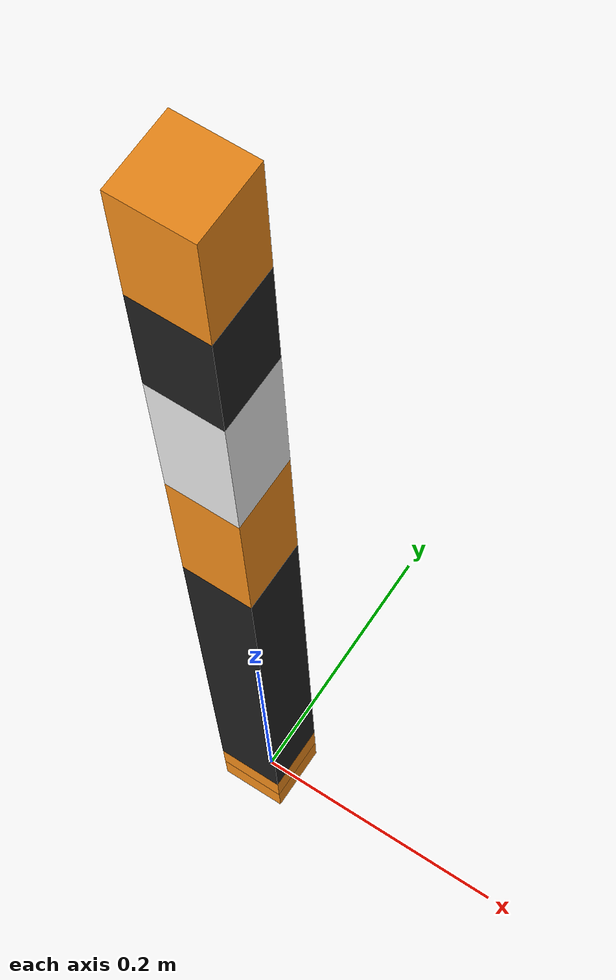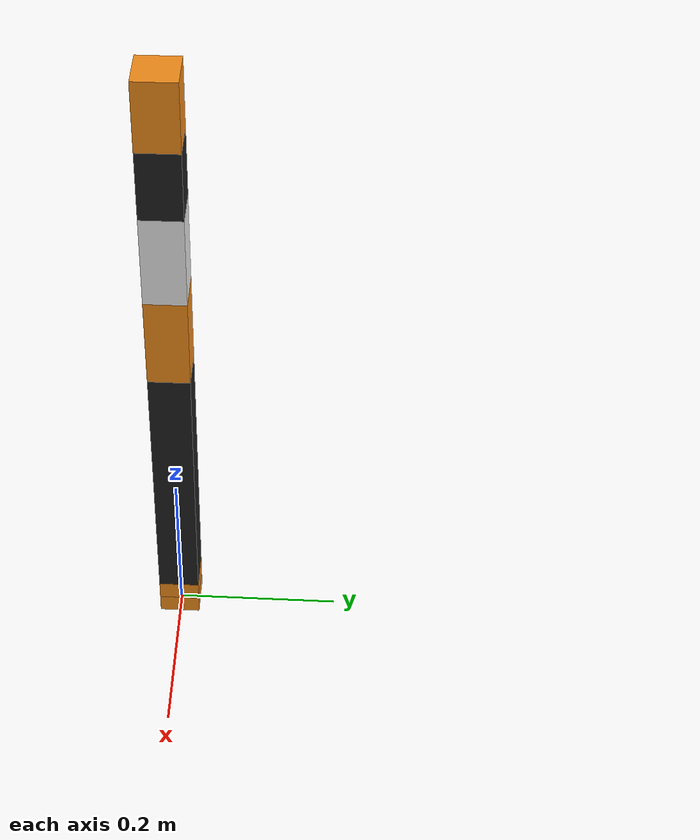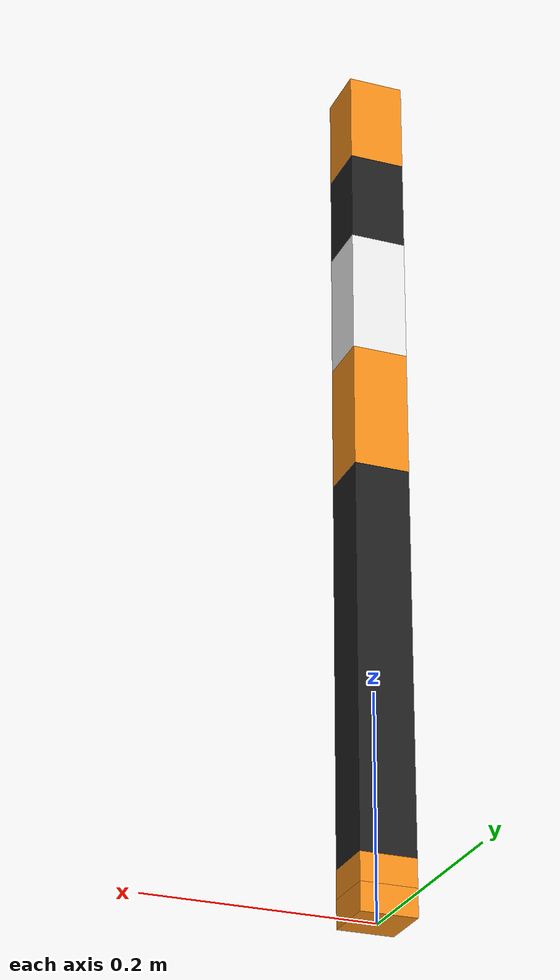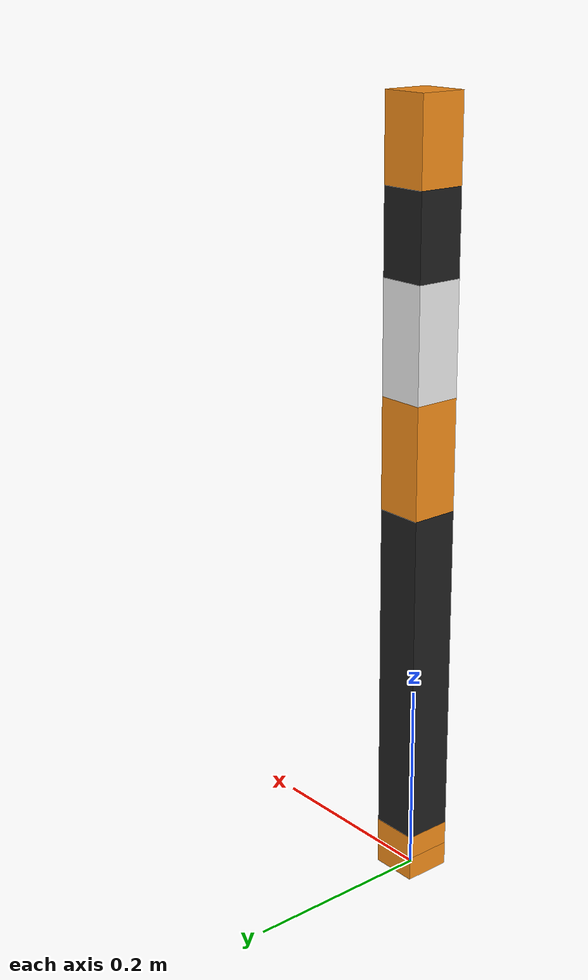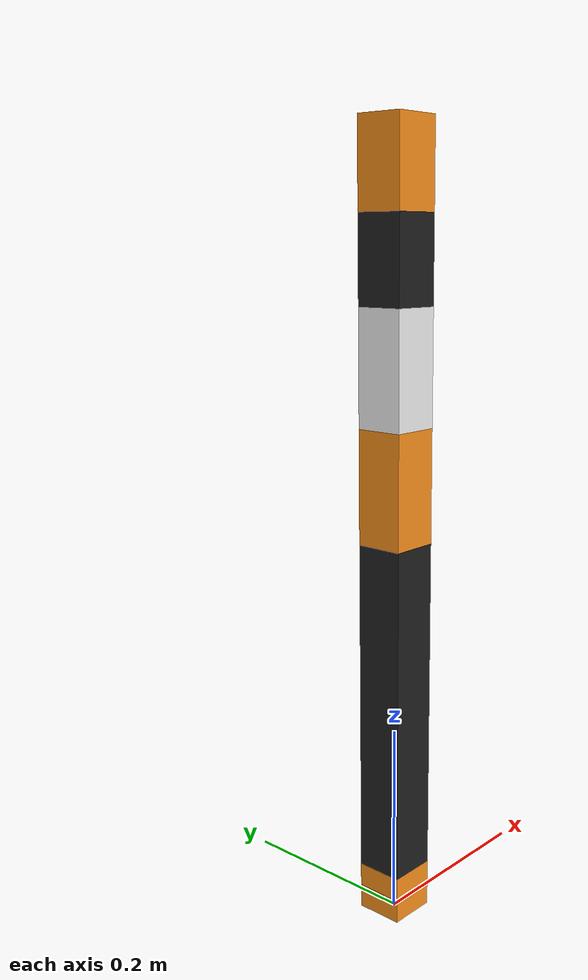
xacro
<?xml version="1.0"?>
<!-- Revolute-Revolute Manipulator -->
<robot name="rrbot" xmlns:xacro="http://www.ros.org/wiki/xacro">

  <!-- Constants for robot dimensions -->
  <xacro:property name="PI" value="3.1415926535897931"/>
  <xacro:property name="mass" value="1" /> <!-- arbitrary value for mass -->
  <xacro:property name="width" value="0.05" /> <!-- Square dimensions (widthxwidth) of beams -->
  <xacro:property name="height1" value="0.025" /> <!-- Link 1 -->
  <xacro:property name="height2" value="0.35" /> <!-- Link 2 -->
  <xacro:property name="height3" value="0.115" /> <!-- Link 3 -->
  <xacro:property name="height4" value="0.115" /> <!-- Link 4 -->
  <xacro:property name="height5" value="0.085" /> <!-- Link 5 -->
  <xacro:property name="height6" value="0.085" /> <!-- Link 6 -->
  <xacro:property name="camera_link" value="0.05" /> <!-- Size of square 'camera' box -->
  <xacro:property name="axel_offset" value="0.05" /> <!-- Space btw top of beam and the each joint -->

  <!-- Import all Gazebo-customization elements, including Gazebo colors -->
  <xacro:include filename="$(find rrbot_description)/urdf/rrbot.gazebo" />
  <!-- Import Rviz colors -->
  <xacro:include filename="$(find rrbot_description)/urdf/materials.xacro" />

  <!-- Used for fixing robot to Gazebo 'base_link' -->
  <link name="world"/>

  <joint name="fixed" type="fixed">
    <parent link="world"/>
    <child link="base"/>
  </joint>

  <!-- Base Link -->

  <link name="base">
    <collision>
      <origin xyz="0 0 ${height1/2}" rpy="0 0 0"/>
      <geometry>
	      <box size="${width} ${width} ${height1}"/>
      </geometry>
    </collision>

    <visual>
      <origin xyz="0 0 ${height1/2}" rpy="0 0 0"/>
      <geometry>
        <box size="${width} ${width} ${height1}"/>
      </geometry>
      <material name="orange"/>
    </visual>

    <inertial>
      <origin xyz="0 0 ${height1/2}" rpy="0 0 0"/>
      <mass value="${mass}"/>
      <inertia
        ixx="${mass / 12.0 * (width*width + height1*height1)}" ixy="0.0" ixz="0.0"
        iyy="${mass / 12.0 * (height1*height1 + width*width)}" iyz="0.0"
        izz="${mass / 12.0 * (width*width + width*width)}"/>
    </inertial>
  </link>

  <joint name="joint1" type="continuous">
    <parent link="base"/>
    <child link="link1"/>
    <origin xyz="0 0 ${height1}" rpy="0 0 0"/>
    <axis xyz="0 0 1"/>
    <dynamics damping="0.7"/>
  </joint>

  <link name="link1">
    <collision>
      <origin xyz="0 0 ${height1/2}" rpy="0 0 0"/>
      <geometry>
	      <box size="${width} ${width} ${height1}"/>
      </geometry>
    </collision>

    <visual>
      <origin xyz="0 0 ${height1/2}" rpy="0 0 0"/>
      <geometry>
	      <box size="${width} ${width} ${height1}"/>
      </geometry>
      <material name="orange"/>
    </visual>

    <inertial>
      <origin xyz="0 0 ${height1/2}" rpy="0 0 0"/>
      <mass value="${mass}"/>
      <inertia
	  ixx="${mass / 12.0 * (width*width + height1*height1)}" ixy="0.0" ixz="0.0"
	  iyy="${mass / 12.0 * (height1*height1 + width*width)}" iyz="0.0"
	  izz="${mass / 12.0 * (width*width + width*width)}"/>
    </inertial>
  </link>

  <joint name="joint2" type="continuous">
    <parent link="link1"/>
    <child link="link2"/>
    <origin xyz="0 0 ${height1}" rpy="0 0 0"/>
    <axis xyz="0 -1 0"/>
    <dynamics damping="0.7"/>
  </joint>

  <!-- Link 2 -->
  <link name="link2">
    <collision>
      <origin xyz="0 0 ${height2/2}" rpy="0 0 0"/>
      <geometry>
	<box size="${width} ${width} ${height2}"/>
      </geometry>
    </collision>

    <visual>
      <origin xyz="0 0 ${height2/2}" rpy="0 0 0"/>
      <geometry>
	<box size="${width} ${width} ${height2}"/>
      </geometry>
      <material name="black"/>
    </visual>

    <inertial>
      <origin xyz="0 0 ${height2/2}" rpy="0 0 0"/>
      <mass value="${mass}"/>
      <inertia
	  ixx="${mass / 12.0 * (width*width + height2*height2)}" ixy="0.0" ixz="0.0"
	  iyy="${mass / 12.0 * (height2*height2 + width*width)}" iyz="0.0"
	  izz="${mass / 12.0 * (width*width + width*width)}"/>
    </inertial>
  </link>

  <joint name="joint3" type="continuous">
    <parent link="link2"/>
    <child link="link3"/>
    <origin xyz="0 0 ${height2}" rpy="0 0 0"/>
    <axis xyz="0 -1 0"/>
    <dynamics damping="0.7"/>
  </joint>

  <!-- Top Link -->
  <link name="link3">
    <collision>
      <origin xyz="0 0 ${height3/2}" rpy="0 0 0"/>
      <geometry>
	<box size="${width} ${width} ${height3}"/>
      </geometry>
    </collision>

    <visual>
      <origin xyz="0 0 ${height3/2}" rpy="0 0 0"/>
      <geometry>
	<box size="${width} ${width} ${height3}"/>
      </geometry>
      <material name="orange"/>
    </visual>

    <inertial>
      <origin xyz="0 0 ${height3/2}" rpy="0 0 0"/>
      <mass value="${mass}"/>
      <inertia
	  ixx="${mass / 12.0 * (width*width + height3*height3)}" ixy="0.0" ixz="0.0"
	  iyy="${mass / 12.0 * (height3*height3 + width*width)}" iyz="0.0"
	  izz="${mass / 12.0 * (width*width + width*width)}"/>
    </inertial>
  </link>

  <joint name="joint4" type="continuous">
    <parent link="link3"/>
    <child link="link4"/>
    <origin xyz="0 0 ${height3}" rpy="0 0 0"/>
    <axis xyz="0 0 1"/>
    <dynamics damping="0.7"/>
  </joint>

<!-- Link 4 -->
  <link name="link4">
    <collision>
      <origin xyz="0 0 ${height4/2}" rpy="0 0 0"/>
      <geometry>
	<box size="${width} ${width} ${height4}"/>
      </geometry>
    </collision>

    <visual>
      <origin xyz="0 0 ${height4/2}" rpy="0 0 0"/>
      <geometry>
	<box size="${width} ${width} ${height4}"/>
      </geometry>
      <material name="white"/>
    </visual>

    <inertial>
      <origin xyz="0 0 ${height4/2}" rpy="0 0 0"/>
      <mass value="${mass}"/>
      <inertia
	  ixx="${mass / 12.0 * (width*width + height4*height4)}" ixy="0.0" ixz="0.0"
	  iyy="${mass / 12.0 * (height4*height4 + width*width)}" iyz="0.0"
	  izz="${mass / 12.0 * (width*width + width*width)}"/>
    </inertial>
  </link>

  <joint name="joint5" type="continuous">
    <parent link="link4"/>
    <child link="link5"/>
    <origin xyz="0 0 ${height4}" rpy="0 0 0"/>
    <axis xyz="0 -1 0"/>
    <dynamics damping="0.7"/>
  </joint>

<!-- Link 5 -->
  <link name="link5">
    <collision>
      <origin xyz="0 0 ${height5/2}" rpy="0 0 0"/>
      <geometry>
	<box size="${width} ${width} ${height5}"/>
      </geometry>
    </collision>

    <visual>
      <origin xyz="0 0 ${height5/2}" rpy="0 0 0"/>
      <geometry>
	<box size="${width} ${width} ${height5}"/>
      </geometry>
      <material name="black"/>
    </visual>

    <inertial>
      <origin xyz="0 0 ${height5/2}" rpy="0 0 0"/>
      <mass value="${mass}"/>
      <inertia
	  ixx="${mass / 12.0 * (width*width + height5*height5)}" ixy="0.0" ixz="0.0"
	  iyy="${mass / 12.0 * (height5*height5 + width*width)}" iyz="0.0"
	  izz="${mass / 12.0 * (width*width + width*width)}"/>
    </inertial>
  </link>

  <joint name="joint6" type="continuous">
    <parent link="link5"/>
    <child link="link6"/>
    <origin xyz="0 0 ${height5}" rpy="0 0 0"/>
    <axis xyz="0 0 1"/>
    <dynamics damping="0.7"/>
  </joint>

<!-- Link 6 -->
  <link name="link6">
    <collision>
      <origin xyz="0 0 ${height6/2}" rpy="0 0 0"/>
      <geometry>
	<box size="${width} ${width} ${height6}"/>
      </geometry>
    </collision>

    <visual>
      <origin xyz="0 0 ${height6/2}" rpy="0 0 0"/>
      <geometry>
	<box size="${width} ${width} ${height6}"/>
      </geometry>
      <material name="orange"/>
    </visual>

    <inertial>
      <origin xyz="0 0 ${height6/2}" rpy="0 0 0"/>
      <mass value="${mass}"/>
      <inertia
	  ixx="${mass / 12.0 * (width*width + height6*height6)}" ixy="0.0" ixz="0.0"
	  iyy="${mass / 12.0 * (height6*height6 + width*width)}" iyz="0.0"
	  izz="${mass / 12.0 * (width*width + width*width)}"/>
    </inertial>
  </link>

  <joint name="end_effector_fixed" type="fixed">
    <parent link="link6"/>
    <child link="end_effector"/>
    <origin xyz="0 0 ${height6}" rpy="0 0 0"/>
  </joint>

  <link name="end_effector">
    <collision>
      <origin xyz="0 0 0" rpy="0 0 0"/>
      <geometry>
	      <box size="0 0 0"/>
      </geometry>
    </collision>

    <visual>
      <origin xyz="0 0 0" rpy="0 0 0"/>
      <geometry>
	      <box size="0 0 0"/>
      </geometry>
      <material name="orange"/>
    </visual>

    <inertial>
      <origin xyz="0 0 0" rpy="0 0 0"/>
      <mass value="0"/>
      <inertia
	  ixx="0" ixy="0.0" ixz="0.0"
	  iyy="0" iyz="0.0"
	  izz="0"/>
    </inertial>
  </link>

  <transmission name="tran1">
    <type>transmission_interface/SimpleTransmission</type>
    <joint name="joint1">
      <hardwareInterface>hardware_interface/EffortJointInterface</hardwareInterface>
    </joint>
    <actuator name="motor1">
      <hardwareInterface>hardware_interface/EffortJointInterface</hardwareInterface>
      <mechanicalReduction>1</mechanicalReduction>
    </actuator>
  </transmission>

  <transmission name="tran2">
    <type>transmission_interface/SimpleTransmission</type>
    <joint name="joint2">
      <hardwareInterface>hardware_interface/EffortJointInterface</hardwareInterface>
    </joint>
    <actuator name="motor2">
      <hardwareInterface>hardware_interface/EffortJointInterface</hardwareInterface>
      <mechanicalReduction>1</mechanicalReduction>
    </actuator>
  </transmission>

  <transmission name="tran3">
    <type>transmission_interface/SimpleTransmission</type>
    <joint name="joint3">
      <hardwareInterface>hardware_interface/EffortJointInterface</hardwareInterface>
    </joint>
    <actuator name="motor3">
      <hardwareInterface>hardware_interface/EffortJointInterface</hardwareInterface>
      <mechanicalReduction>1</mechanicalReduction>
    </actuator>
  </transmission>

</robot>
